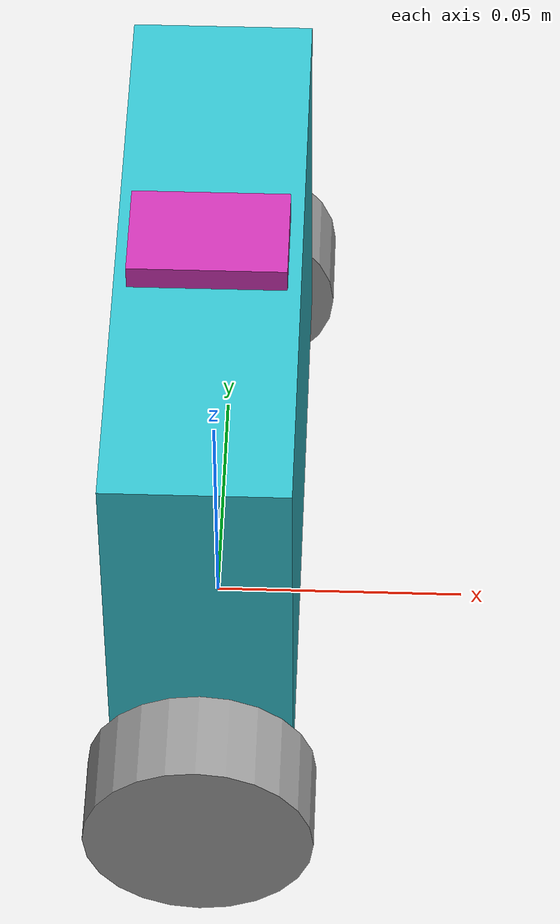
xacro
<?xml version="1.0"?>

<robot xmlns:xacro="http://www.ros.org/wiki/xacro"
       xmlns:gz="http://gazebosim.org/schema">

    <!-- VARIABLES -->
    <xacro:property name="chassis_length" value="0.035" />
    <xacro:property name="chassis_width"  value="0.120" />
    <xacro:property name="chassis_height" value="0.080" />

    <xacro:property name="wheel_radius"   value="0.022" />
    <xacro:property name="wheel_width"    value="0.018" />
    <xacro:property name="track_width"    value="0.140" />   <!-- left-to-right wheel center distance -->

    <xacro:property name="imu_length" value="0.030" />
    <xacro:property name="imu_width"  value="0.020" />
    <xacro:property name="imu_height" value="0.005" />

    <!-- FUNCTIONS/MACROS -->
    <xacro:macro name="wheel" params="name_prefix">
        <link name="${name_prefix}_wheel">

            <xacro:cylinder_inertia m="0.018" r="${wheel_radius}" h="${wheel_width}"
                                    o_xyz="0.0 0.0 0.0" o_rpy="${pi/2.0} 0.0 0.0" />

            <visual>
                <origin xyz="0.0 0.0 0.0" rpy="${pi/2.0} 0.0 0.0" />
                <geometry>
                    <cylinder radius="${wheel_radius}" length="${wheel_width}" />
                </geometry>
                <material name="gray" />
            </visual>

            <collision>
                <origin xyz="0.0 0.0 0.0" rpy="${pi/2.0} 0.0 0.0" />
                <geometry>
                  <sphere radius="${wheel_radius}" />
                </geometry>
            </collision>

        </link>
    </xacro:macro>

    <!-- LINKS -->
    <link name="base_link">
    </link>

    <link name="chassis">

        <xacro:box_inertia m="0.3" x="${chassis_length}" y="${chassis_width}" z="${chassis_height}"
                           o_xyz="0.0 0.0 0.0" o_rpy="0.0 0.0 0.0" />

        <visual>
            <origin xyz="0.0 0.0 0.0" rpy="0.0 0.0 0.0" />
            <geometry>
                <box size="${chassis_length} ${chassis_width} ${chassis_height}" />
            </geometry>
            <material name="cyan" />
        </visual>

        <collision>
            <origin xyz="0.0 0.0 0.0" rpy="0.0 0.0 0.0" />
            <geometry>
                <box size="${chassis_length} ${chassis_width} ${chassis_height}" />
            </geometry>
        </collision>

    </link>

    <xacro:wheel name_prefix="left" />
    <xacro:wheel name_prefix="right" />

    <link name="imu">

        <xacro:box_inertia m="0.005" x="${imu_length}" y="${imu_width}" z="${imu_height}"
                           o_xyz="0.0 0.0 0.0" o_rpy="0.0 0.0 0.0" />

        <visual>
            <origin xyz="0.0 0.0 0.0" rpy="0.0 0.0 0.0" />
            <geometry>
                <box size="${imu_length} ${imu_width} ${imu_height}" />
            </geometry>
            <material name="magenta" />
        </visual>

        <collision>
            <origin xyz="0.0 0.0 0.0" rpy="0.0 0.0 0.0" />
            <geometry>
                <box size="${imu_length} ${imu_width} ${imu_height}" />
            </geometry>
        </collision>

    </link>

    <!-- JOINTS -->
    <joint name="base_link_TO_chassis" type="fixed">
        <parent link="base_link" />
        <child link="chassis" />
        <origin xyz="0.0 0.0 ${wheel_radius + (chassis_height/2.0)}" rpy= "0.0 0.0 0.0" />
    </joint>

    <joint name="chassis_TO_left_wheel" type="continuous">
        <parent link="chassis" />
        <child link="left_wheel" />
        <origin xyz="0.0 ${(track_width/2.0)} -${(chassis_height/2.0)}" rpy="0.0 0.0 0.0" />
        <axis xyz = "0 1 0" />
    </joint>

    <joint name="chassis_TO_right_wheel" type="continuous">
        <parent link="chassis" />
        <child link="right_wheel" />
        <origin xyz="0.0 -${(track_width/2.0)} -${(chassis_height/2.0)}" rpy="0.0 0.0 0.0" />
        <axis xyz = "0 1 0" />

    </joint>

        <joint name="chassis_TO_imu" type="fixed">
        <parent link="chassis" />
        <child link="imu" />
        <origin xyz="0.0 0.0 ${(chassis_height/2.0) + (imu_height/2.0)}" rpy="0.0 0.0 0.0" />
    </joint>

</robot>
